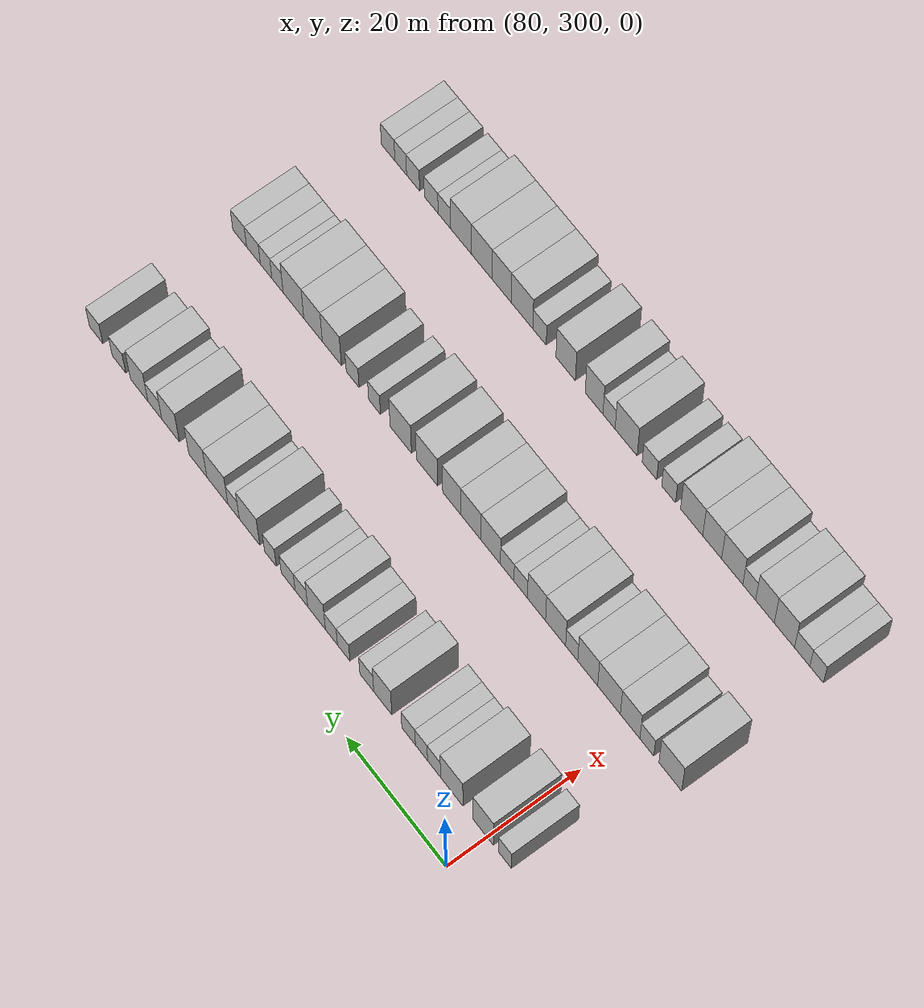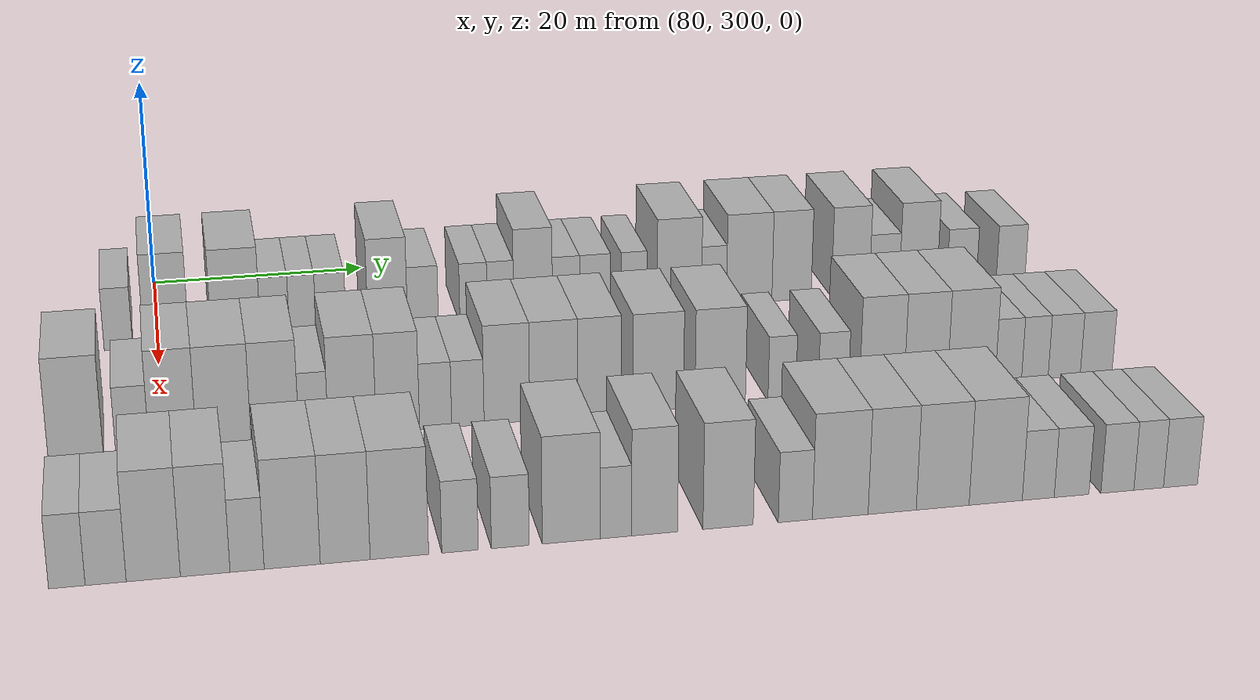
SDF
<sdf version="1.6">
 <world name="default">
  <model name="building_734">
   <static>1</static>
   <pose>91.0000 296.4878 0 0.000000 0.000000 0.000000</pose>
   <link name="link">
    <pose>0 0 3.00 0 0 0</pose>
    <collision name="collision"><geometry><box><size>10.0000 2.5455 6.0000</size></box></geometry></collision>
    <visual name="visual">
     <cast_shadows>0</cast_shadows>
     <geometry><box><size>10.0000 2.5455 6.0000</size></box></geometry>
     <material>
      <script>
       <uri>model://HANNAS_wall/materials/scripts</uri>
       <uri>model://HANNAS_wall/materials/textures</uri>
       <name>vrc/HANNAS_wall</name>
      </script>
     </material>
    </visual>
   </link>
  </model>
  <model name="building_735">
   <static>1</static>
   <pose>91.0000 300.7829 0 0.000000 0.000000 0.000000</pose>
   <link name="link">
    <pose>0 0 4.50 0 0 0</pose>
    <collision name="collision"><geometry><box><size>10.0000 4.0446 9.0000</size></box></geometry></collision>
    <visual name="visual">
     <cast_shadows>0</cast_shadows>
     <geometry><box><size>10.0000 4.0446 9.0000</size></box></geometry>
     <material>
      <script>
       <uri>model://HANNAS_wall/materials/scripts</uri>
       <uri>model://HANNAS_wall/materials/textures</uri>
       <name>vrc/HANNAS_wall</name>
      </script>
     </material>
    </visual>
   </link>
  </model>
  <model name="building_736">
   <static>1</static>
   <pose>91.0000 307.0333 0 0.000000 0.000000 0.000000</pose>
   <link name="link">
    <pose>0 0 4.50 0 0 0</pose>
    <collision name="collision"><geometry><box><size>10.0000 4.4562 9.0000</size></box></geometry></collision>
    <visual name="visual">
     <cast_shadows>0</cast_shadows>
     <geometry><box><size>10.0000 4.4562 9.0000</size></box></geometry>
     <material>
      <script>
       <uri>model://HANNAS_wall/materials/scripts</uri>
       <uri>model://HANNAS_wall/materials/textures</uri>
       <name>vrc/HANNAS_wall</name>
      </script>
     </material>
    </visual>
   </link>
  </model>
  <model name="building_737">
   <static>1</static>
   <pose>91.0000 310.5720 0 0.000000 0.000000 0.000000</pose>
   <link name="link">
    <pose>0 0 3.00 0 0 0</pose>
    <collision name="collision"><geometry><box><size>10.0000 2.6213 6.0000</size></box></geometry></collision>
    <visual name="visual">
     <cast_shadows>0</cast_shadows>
     <geometry><box><size>10.0000 2.6213 6.0000</size></box></geometry>
     <material>
      <script>
       <uri>model://HANNAS_wall/materials/scripts</uri>
       <uri>model://HANNAS_wall/materials/textures</uri>
       <name>vrc/HANNAS_wall</name>
      </script>
     </material>
    </visual>
   </link>
  </model>
  <model name="building_738">
   <static>1</static>
   <pose>91.0000 313.1034 0 0.000000 0.000000 0.000000</pose>
   <link name="link">
    <pose>0 0 3.00 0 0 0</pose>
    <collision name="collision"><geometry><box><size>10.0000 2.4415 6.0000</size></box></geometry></collision>
    <visual name="visual">
     <cast_shadows>0</cast_shadows>
     <geometry><box><size>10.0000 2.4415 6.0000</size></box></geometry>
     <material>
      <script>
       <uri>model://HANNAS_wall/materials/scripts</uri>
       <uri>model://HANNAS_wall/materials/textures</uri>
       <name>vrc/HANNAS_wall</name>
      </script>
     </material>
    </visual>
   </link>
  </model>
  <model name="building_739">
   <static>1</static>
   <pose>91.0000 315.6967 0 0.000000 0.000000 0.000000</pose>
   <link name="link">
    <pose>0 0 3.00 0 0 0</pose>
    <collision name="collision"><geometry><box><size>10.0000 2.7450 6.0000</size></box></geometry></collision>
    <visual name="visual">
     <cast_shadows>0</cast_shadows>
     <geometry><box><size>10.0000 2.7450 6.0000</size></box></geometry>
     <material>
      <script>
       <uri>model://HANNAS_wall/materials/scripts</uri>
       <uri>model://HANNAS_wall/materials/textures</uri>
       <name>vrc/HANNAS_wall</name>
      </script>
     </material>
    </visual>
   </link>
  </model>
  <model name="building_740">
   <static>1</static>
   <pose>91.0000 320.8995 0 0.000000 0.000000 0.000000</pose>
   <link name="link">
    <pose>0 0 4.50 0 0 0</pose>
    <collision name="collision"><geometry><box><size>10.0000 3.6604 9.0000</size></box></geometry></collision>
    <visual name="visual">
     <cast_shadows>0</cast_shadows>
     <geometry><box><size>10.0000 3.6604 9.0000</size></box></geometry>
     <material>
      <script>
       <uri>model://HANNAS_wall/materials/scripts</uri>
       <uri>model://HANNAS_wall/materials/textures</uri>
       <name>vrc/HANNAS_wall</name>
      </script>
     </material>
    </visual>
   </link>
  </model>
  <model name="building_741">
   <static>1</static>
   <pose>91.0000 324.1575 0 0.000000 0.000000 0.000000</pose>
   <link name="link">
    <pose>0 0 3.00 0 0 0</pose>
    <collision name="collision"><geometry><box><size>10.0000 2.8557 6.0000</size></box></geometry></collision>
    <visual name="visual">
     <cast_shadows>0</cast_shadows>
     <geometry><box><size>10.0000 2.8557 6.0000</size></box></geometry>
     <material>
      <script>
       <uri>model://HANNAS_wall/materials/scripts</uri>
       <uri>model://HANNAS_wall/materials/textures</uri>
       <name>vrc/HANNAS_wall</name>
      </script>
     </material>
    </visual>
   </link>
  </model>
  <model name="building_742">
   <static>1</static>
   <pose>91.0000 328.8654 0 0.000000 0.000000 0.000000</pose>
   <link name="link">
    <pose>0 0 3.00 0 0 0</pose>
    <collision name="collision"><geometry><box><size>10.0000 2.5600 6.0000</size></box></geometry></collision>
    <visual name="visual">
     <cast_shadows>0</cast_shadows>
     <geometry><box><size>10.0000 2.5600 6.0000</size></box></geometry>
     <material>
      <script>
       <uri>model://HANNAS_wall/materials/scripts</uri>
       <uri>model://HANNAS_wall/materials/textures</uri>
       <name>vrc/HANNAS_wall</name>
      </script>
     </material>
    </visual>
   </link>
  </model>
  <model name="building_743">
   <static>1</static>
   <pose>91.0000 331.3856 0 0.000000 0.000000 0.000000</pose>
   <link name="link">
    <pose>0 0 3.00 0 0 0</pose>
    <collision name="collision"><geometry><box><size>10.0000 2.4803 6.0000</size></box></geometry></collision>
    <visual name="visual">
     <cast_shadows>0</cast_shadows>
     <geometry><box><size>10.0000 2.4803 6.0000</size></box></geometry>
     <material>
      <script>
       <uri>model://HANNAS_wall/materials/scripts</uri>
       <uri>model://HANNAS_wall/materials/textures</uri>
       <name>vrc/HANNAS_wall</name>
      </script>
     </material>
    </visual>
   </link>
  </model>
  <model name="building_744">
   <static>1</static>
   <pose>91.0000 334.4514 0 0.000000 0.000000 0.000000</pose>
   <link name="link">
    <pose>0 0 4.50 0 0 0</pose>
    <collision name="collision"><geometry><box><size>10.0000 3.6512 9.0000</size></box></geometry></collision>
    <visual name="visual">
     <cast_shadows>0</cast_shadows>
     <geometry><box><size>10.0000 3.6512 9.0000</size></box></geometry>
     <material>
      <script>
       <uri>model://HANNAS_wall/materials/scripts</uri>
       <uri>model://HANNAS_wall/materials/textures</uri>
       <name>vrc/HANNAS_wall</name>
      </script>
     </material>
    </visual>
   </link>
  </model>
  <model name="building_745">
   <static>1</static>
   <pose>91.0000 337.5708 0 0.000000 0.000000 0.000000</pose>
   <link name="link">
    <pose>0 0 3.00 0 0 0</pose>
    <collision name="collision"><geometry><box><size>10.0000 2.5877 6.0000</size></box></geometry></collision>
    <visual name="visual">
     <cast_shadows>0</cast_shadows>
     <geometry><box><size>10.0000 2.5877 6.0000</size></box></geometry>
     <material>
      <script>
       <uri>model://HANNAS_wall/materials/scripts</uri>
       <uri>model://HANNAS_wall/materials/textures</uri>
       <name>vrc/HANNAS_wall</name>
      </script>
     </material>
    </visual>
   </link>
  </model>
  <model name="building_746">
   <static>1</static>
   <pose>91.0000 340.3262 0 0.000000 0.000000 0.000000</pose>
   <link name="link">
    <pose>0 0 3.00 0 0 0</pose>
    <collision name="collision"><geometry><box><size>10.0000 2.9230 6.0000</size></box></geometry></collision>
    <visual name="visual">
     <cast_shadows>0</cast_shadows>
     <geometry><box><size>10.0000 2.9230 6.0000</size></box></geometry>
     <material>
      <script>
       <uri>model://HANNAS_wall/materials/scripts</uri>
       <uri>model://HANNAS_wall/materials/textures</uri>
       <name>vrc/HANNAS_wall</name>
      </script>
     </material>
    </visual>
   </link>
  </model>
  <model name="building_747">
   <static>1</static>
   <pose>91.0000 344.0159 0 0.000000 0.000000 0.000000</pose>
   <link name="link">
    <pose>0 0 3.00 0 0 0</pose>
    <collision name="collision"><geometry><box><size>10.0000 2.4564 6.0000</size></box></geometry></collision>
    <visual name="visual">
     <cast_shadows>0</cast_shadows>
     <geometry><box><size>10.0000 2.4564 6.0000</size></box></geometry>
     <material>
      <script>
       <uri>model://HANNAS_wall/materials/scripts</uri>
       <uri>model://HANNAS_wall/materials/textures</uri>
       <name>vrc/HANNAS_wall</name>
      </script>
     </material>
    </visual>
   </link>
  </model>
  <model name="building_748">
   <static>1</static>
   <pose>91.0000 348.3791 0 0.000000 0.000000 0.000000</pose>
   <link name="link">
    <pose>0 0 4.50 0 0 0</pose>
    <collision name="collision"><geometry><box><size>10.0000 4.2700 9.0000</size></box></geometry></collision>
    <visual name="visual">
     <cast_shadows>0</cast_shadows>
     <geometry><box><size>10.0000 4.2700 9.0000</size></box></geometry>
     <material>
      <script>
       <uri>model://HANNAS_wall/materials/scripts</uri>
       <uri>model://HANNAS_wall/materials/textures</uri>
       <name>vrc/HANNAS_wall</name>
      </script>
     </material>
    </visual>
   </link>
  </model>
  <model name="building_749">
   <static>1</static>
   <pose>91.0000 351.7228 0 0.000000 0.000000 0.000000</pose>
   <link name="link">
    <pose>0 0 3.00 0 0 0</pose>
    <collision name="collision"><geometry><box><size>10.0000 2.4174 6.0000</size></box></geometry></collision>
    <visual name="visual">
     <cast_shadows>0</cast_shadows>
     <geometry><box><size>10.0000 2.4174 6.0000</size></box></geometry>
     <material>
      <script>
       <uri>model://HANNAS_wall/materials/scripts</uri>
       <uri>model://HANNAS_wall/materials/textures</uri>
       <name>vrc/HANNAS_wall</name>
      </script>
     </material>
    </visual>
   </link>
  </model>
  <model name="building_750">
   <static>1</static>
   <pose>91.0000 355.1483 0 0.000000 0.000000 0.000000</pose>
   <link name="link">
    <pose>0 0 4.50 0 0 0</pose>
    <collision name="collision"><geometry><box><size>10.0000 4.4337 9.0000</size></box></geometry></collision>
    <visual name="visual">
     <cast_shadows>0</cast_shadows>
     <geometry><box><size>10.0000 4.4337 9.0000</size></box></geometry>
     <material>
      <script>
       <uri>model://HANNAS_wall/materials/scripts</uri>
       <uri>model://HANNAS_wall/materials/textures</uri>
       <name>vrc/HANNAS_wall</name>
      </script>
     </material>
    </visual>
   </link>
  </model>
  <model name="building_751">
   <static>1</static>
   <pose>91.0000 359.2871 0 0.000000 0.000000 0.000000</pose>
   <link name="link">
    <pose>0 0 4.50 0 0 0</pose>
    <collision name="collision"><geometry><box><size>10.0000 3.8438 9.0000</size></box></geometry></collision>
    <visual name="visual">
     <cast_shadows>0</cast_shadows>
     <geometry><box><size>10.0000 3.8438 9.0000</size></box></geometry>
     <material>
      <script>
       <uri>model://HANNAS_wall/materials/scripts</uri>
       <uri>model://HANNAS_wall/materials/textures</uri>
       <name>vrc/HANNAS_wall</name>
      </script>
     </material>
    </visual>
   </link>
  </model>
  <model name="building_752">
   <static>1</static>
   <pose>91.0000 365.0783 0 0.000000 0.000000 0.000000</pose>
   <link name="link">
    <pose>0 0 4.50 0 0 0</pose>
    <collision name="collision"><geometry><box><size>10.0000 3.7385 9.0000</size></box></geometry></collision>
    <visual name="visual">
     <cast_shadows>0</cast_shadows>
     <geometry><box><size>10.0000 3.7385 9.0000</size></box></geometry>
     <material>
      <script>
       <uri>model://HANNAS_wall/materials/scripts</uri>
       <uri>model://HANNAS_wall/materials/textures</uri>
       <name>vrc/HANNAS_wall</name>
      </script>
     </material>
    </visual>
   </link>
  </model>
  <model name="building_753">
   <static>1</static>
   <pose>91.0000 368.4300 0 0.000000 0.000000 0.000000</pose>
   <link name="link">
    <pose>0 0 3.00 0 0 0</pose>
    <collision name="collision"><geometry><box><size>10.0000 2.9649 6.0000</size></box></geometry></collision>
    <visual name="visual">
     <cast_shadows>0</cast_shadows>
     <geometry><box><size>10.0000 2.9649 6.0000</size></box></geometry>
     <material>
      <script>
       <uri>model://HANNAS_wall/materials/scripts</uri>
       <uri>model://HANNAS_wall/materials/textures</uri>
       <name>vrc/HANNAS_wall</name>
      </script>
     </material>
    </visual>
   </link>
  </model>
  <model name="building_754">
   <static>1</static>
   <pose>91.0000 371.7949 0 0.000000 0.000000 0.000000</pose>
   <link name="link">
    <pose>0 0 4.50 0 0 0</pose>
    <collision name="collision"><geometry><box><size>10.0000 3.7648 9.0000</size></box></geometry></collision>
    <visual name="visual">
     <cast_shadows>0</cast_shadows>
     <geometry><box><size>10.0000 3.7648 9.0000</size></box></geometry>
     <material>
      <script>
       <uri>model://HANNAS_wall/materials/scripts</uri>
       <uri>model://HANNAS_wall/materials/textures</uri>
       <name>vrc/HANNAS_wall</name>
      </script>
     </material>
    </visual>
   </link>
  </model>
  <model name="building_755">
   <static>1</static>
   <pose>91.0000 376.1648 0 0.000000 0.000000 0.000000</pose>
   <link name="link">
    <pose>0 0 3.00 0 0 0</pose>
    <collision name="collision"><geometry><box><size>10.0000 2.9751 6.0000</size></box></geometry></collision>
    <visual name="visual">
     <cast_shadows>0</cast_shadows>
     <geometry><box><size>10.0000 2.9751 6.0000</size></box></geometry>
     <material>
      <script>
       <uri>model://HANNAS_wall/materials/scripts</uri>
       <uri>model://HANNAS_wall/materials/textures</uri>
       <name>vrc/HANNAS_wall</name>
      </script>
     </material>
    </visual>
   </link>
  </model>
  <model name="building_756">
   <static>1</static>
   <pose>91.0000 381.1087 0 0.000000 0.000000 0.000000</pose>
   <link name="link">
    <pose>0 0 3.00 0 0 0</pose>
    <collision name="collision"><geometry><box><size>10.0000 2.9127 6.0000</size></box></geometry></collision>
    <visual name="visual">
     <cast_shadows>0</cast_shadows>
     <geometry><box><size>10.0000 2.9127 6.0000</size></box></geometry>
     <material>
      <script>
       <uri>model://HANNAS_wall/materials/scripts</uri>
       <uri>model://HANNAS_wall/materials/textures</uri>
       <name>vrc/HANNAS_wall</name>
      </script>
     </material>
    </visual>
   </link>
  </model>
  <model name="building_921">
   <static>1</static>
   <pose>113.0000 292.8996 0 0.000000 0.000000 0.000000</pose>
   <link name="link">
    <pose>0 0 4.50 0 0 0</pose>
    <collision name="collision"><geometry><box><size>10.0000 4.4288 9.0000</size></box></geometry></collision>
    <visual name="visual">
     <cast_shadows>0</cast_shadows>
     <geometry><box><size>10.0000 4.4288 9.0000</size></box></geometry>
     <material>
      <script>
       <uri>model://HANNAS_wall/materials/scripts</uri>
       <uri>model://HANNAS_wall/materials/textures</uri>
       <name>vrc/HANNAS_wall</name>
      </script>
     </material>
    </visual>
   </link>
  </model>
  <model name="building_922">
   <static>1</static>
   <pose>113.0000 297.4747 0 0.000000 0.000000 0.000000</pose>
   <link name="link">
    <pose>0 0 3.00 0 0 0</pose>
    <collision name="collision"><geometry><box><size>10.0000 2.7214 6.0000</size></box></geometry></collision>
    <visual name="visual">
     <cast_shadows>0</cast_shadows>
     <geometry><box><size>10.0000 2.7214 6.0000</size></box></geometry>
     <material>
      <script>
       <uri>model://HANNAS_wall/materials/scripts</uri>
       <uri>model://HANNAS_wall/materials/textures</uri>
       <name>vrc/HANNAS_wall</name>
      </script>
     </material>
    </visual>
   </link>
  </model>
  <model name="building_923">
   <static>1</static>
   <pose>113.0000 300.7567 0 0.000000 0.000000 0.000000</pose>
   <link name="link">
    <pose>0 0 4.50 0 0 0</pose>
    <collision name="collision"><geometry><box><size>10.0000 3.8426 9.0000</size></box></geometry></collision>
    <visual name="visual">
     <cast_shadows>0</cast_shadows>
     <geometry><box><size>10.0000 3.8426 9.0000</size></box></geometry>
     <material>
      <script>
       <uri>model://HANNAS_wall/materials/scripts</uri>
       <uri>model://HANNAS_wall/materials/textures</uri>
       <name>vrc/HANNAS_wall</name>
      </script>
     </material>
    </visual>
   </link>
  </model>
  <model name="building_924">
   <static>1</static>
   <pose>113.0000 304.9173 0 0.000000 0.000000 0.000000</pose>
   <link name="link">
    <pose>0 0 4.50 0 0 0</pose>
    <collision name="collision"><geometry><box><size>10.0000 4.4786 9.0000</size></box></geometry></collision>
    <visual name="visual">
     <cast_shadows>0</cast_shadows>
     <geometry><box><size>10.0000 4.4786 9.0000</size></box></geometry>
     <material>
      <script>
       <uri>model://HANNAS_wall/materials/scripts</uri>
       <uri>model://HANNAS_wall/materials/textures</uri>
       <name>vrc/HANNAS_wall</name>
      </script>
     </material>
    </visual>
   </link>
  </model>
  <model name="building_925">
   <static>1</static>
   <pose>113.0000 309.1323 0 0.000000 0.000000 0.000000</pose>
   <link name="link">
    <pose>0 0 4.50 0 0 0</pose>
    <collision name="collision"><geometry><box><size>10.0000 3.9515 9.0000</size></box></geometry></collision>
    <visual name="visual">
     <cast_shadows>0</cast_shadows>
     <geometry><box><size>10.0000 3.9515 9.0000</size></box></geometry>
     <material>
      <script>
       <uri>model://HANNAS_wall/materials/scripts</uri>
       <uri>model://HANNAS_wall/materials/textures</uri>
       <name>vrc/HANNAS_wall</name>
      </script>
     </material>
    </visual>
   </link>
  </model>
  <model name="building_926">
   <static>1</static>
   <pose>113.0000 312.3217 0 0.000000 0.000000 0.000000</pose>
   <link name="link">
    <pose>0 0 3.00 0 0 0</pose>
    <collision name="collision"><geometry><box><size>10.0000 2.4273 6.0000</size></box></geometry></collision>
    <visual name="visual">
     <cast_shadows>0</cast_shadows>
     <geometry><box><size>10.0000 2.4273 6.0000</size></box></geometry>
     <material>
      <script>
       <uri>model://HANNAS_wall/materials/scripts</uri>
       <uri>model://HANNAS_wall/materials/textures</uri>
       <name>vrc/HANNAS_wall</name>
      </script>
     </material>
    </visual>
   </link>
  </model>
  <model name="building_927">
   <static>1</static>
   <pose>113.0000 315.5363 0 0.000000 0.000000 0.000000</pose>
   <link name="link">
    <pose>0 0 4.50 0 0 0</pose>
    <collision name="collision"><geometry><box><size>10.0000 4.0019 9.0000</size></box></geometry></collision>
    <visual name="visual">
     <cast_shadows>0</cast_shadows>
     <geometry><box><size>10.0000 4.0019 9.0000</size></box></geometry>
     <material>
      <script>
       <uri>model://HANNAS_wall/materials/scripts</uri>
       <uri>model://HANNAS_wall/materials/textures</uri>
       <name>vrc/HANNAS_wall</name>
      </script>
     </material>
    </visual>
   </link>
  </model>
  <model name="building_928">
   <static>1</static>
   <pose>113.0000 319.3557 0 0.000000 0.000000 0.000000</pose>
   <link name="link">
    <pose>0 0 4.50 0 0 0</pose>
    <collision name="collision"><geometry><box><size>10.0000 3.6367 9.0000</size></box></geometry></collision>
    <visual name="visual">
     <cast_shadows>0</cast_shadows>
     <geometry><box><size>10.0000 3.6367 9.0000</size></box></geometry>
     <material>
      <script>
       <uri>model://HANNAS_wall/materials/scripts</uri>
       <uri>model://HANNAS_wall/materials/textures</uri>
       <name>vrc/HANNAS_wall</name>
      </script>
     </material>
    </visual>
   </link>
  </model>
  <model name="building_929">
   <static>1</static>
   <pose>113.0000 322.5303 0 0.000000 0.000000 0.000000</pose>
   <link name="link">
    <pose>0 0 3.00 0 0 0</pose>
    <collision name="collision"><geometry><box><size>10.0000 2.7125 6.0000</size></box></geometry></collision>
    <visual name="visual">
     <cast_shadows>0</cast_shadows>
     <geometry><box><size>10.0000 2.7125 6.0000</size></box></geometry>
     <material>
      <script>
       <uri>model://HANNAS_wall/materials/scripts</uri>
       <uri>model://HANNAS_wall/materials/textures</uri>
       <name>vrc/HANNAS_wall</name>
      </script>
     </material>
    </visual>
   </link>
  </model>
  <model name="building_930">
   <static>1</static>
   <pose>113.0000 325.2609 0 0.000000 0.000000 0.000000</pose>
   <link name="link">
    <pose>0 0 3.00 0 0 0</pose>
    <collision name="collision"><geometry><box><size>10.0000 2.7487 6.0000</size></box></geometry></collision>
    <visual name="visual">
     <cast_shadows>0</cast_shadows>
     <geometry><box><size>10.0000 2.7487 6.0000</size></box></geometry>
     <material>
      <script>
       <uri>model://HANNAS_wall/materials/scripts</uri>
       <uri>model://HANNAS_wall/materials/textures</uri>
       <name>vrc/HANNAS_wall</name>
      </script>
     </material>
    </visual>
   </link>
  </model>
  <model name="building_931">
   <static>1</static>
   <pose>113.0000 328.5849 0 0.000000 0.000000 0.000000</pose>
   <link name="link">
    <pose>0 0 4.50 0 0 0</pose>
    <collision name="collision"><geometry><box><size>10.0000 3.8993 9.0000</size></box></geometry></collision>
    <visual name="visual">
     <cast_shadows>0</cast_shadows>
     <geometry><box><size>10.0000 3.8993 9.0000</size></box></geometry>
     <material>
      <script>
       <uri>model://HANNAS_wall/materials/scripts</uri>
       <uri>model://HANNAS_wall/materials/textures</uri>
       <name>vrc/HANNAS_wall</name>
      </script>
     </material>
    </visual>
   </link>
  </model>
  <model name="building_932">
   <static>1</static>
   <pose>113.0000 332.5960 0 0.000000 0.000000 0.000000</pose>
   <link name="link">
    <pose>0 0 4.50 0 0 0</pose>
    <collision name="collision"><geometry><box><size>10.0000 4.1229 9.0000</size></box></geometry></collision>
    <visual name="visual">
     <cast_shadows>0</cast_shadows>
     <geometry><box><size>10.0000 4.1229 9.0000</size></box></geometry>
     <material>
      <script>
       <uri>model://HANNAS_wall/materials/scripts</uri>
       <uri>model://HANNAS_wall/materials/textures</uri>
       <name>vrc/HANNAS_wall</name>
      </script>
     </material>
    </visual>
   </link>
  </model>
  <model name="building_933">
   <static>1</static>
   <pose>113.0000 336.5395 0 0.000000 0.000000 0.000000</pose>
   <link name="link">
    <pose>0 0 4.50 0 0 0</pose>
    <collision name="collision"><geometry><box><size>10.0000 3.7642 9.0000</size></box></geometry></collision>
    <visual name="visual">
     <cast_shadows>0</cast_shadows>
     <geometry><box><size>10.0000 3.7642 9.0000</size></box></geometry>
     <material>
      <script>
       <uri>model://HANNAS_wall/materials/scripts</uri>
       <uri>model://HANNAS_wall/materials/textures</uri>
       <name>vrc/HANNAS_wall</name>
      </script>
     </material>
    </visual>
   </link>
  </model>
  <model name="building_934">
   <static>1</static>
   <pose>113.0000 341.6287 0 0.000000 0.000000 0.000000</pose>
   <link name="link">
    <pose>0 0 4.50 0 0 0</pose>
    <collision name="collision"><geometry><box><size>10.0000 4.4141 9.0000</size></box></geometry></collision>
    <visual name="visual">
     <cast_shadows>0</cast_shadows>
     <geometry><box><size>10.0000 4.4141 9.0000</size></box></geometry>
     <material>
      <script>
       <uri>model://HANNAS_wall/materials/scripts</uri>
       <uri>model://HANNAS_wall/materials/textures</uri>
       <name>vrc/HANNAS_wall</name>
      </script>
     </material>
    </visual>
   </link>
  </model>
  <model name="building_935">
   <static>1</static>
   <pose>113.0000 347.0630 0 0.000000 0.000000 0.000000</pose>
   <link name="link">
    <pose>0 0 4.50 0 0 0</pose>
    <collision name="collision"><geometry><box><size>10.0000 4.4546 9.0000</size></box></geometry></collision>
    <visual name="visual">
     <cast_shadows>0</cast_shadows>
     <geometry><box><size>10.0000 4.4546 9.0000</size></box></geometry>
     <material>
      <script>
       <uri>model://HANNAS_wall/materials/scripts</uri>
       <uri>model://HANNAS_wall/materials/textures</uri>
       <name>vrc/HANNAS_wall</name>
      </script>
     </material>
    </visual>
   </link>
  </model>
  <model name="building_936">
   <static>1</static>
   <pose>113.0000 352.5253 0 0.000000 0.000000 0.000000</pose>
   <link name="link">
    <pose>0 0 3.00 0 0 0</pose>
    <collision name="collision"><geometry><box><size>10.0000 2.4700 6.0000</size></box></geometry></collision>
    <visual name="visual">
     <cast_shadows>0</cast_shadows>
     <geometry><box><size>10.0000 2.4700 6.0000</size></box></geometry>
     <material>
      <script>
       <uri>model://HANNAS_wall/materials/scripts</uri>
       <uri>model://HANNAS_wall/materials/textures</uri>
       <name>vrc/HANNAS_wall</name>
      </script>
     </material>
    </visual>
   </link>
  </model>
  <model name="building_937">
   <static>1</static>
   <pose>113.0000 357.1103 0 0.000000 0.000000 0.000000</pose>
   <link name="link">
    <pose>0 0 3.00 0 0 0</pose>
    <collision name="collision"><geometry><box><size>10.0000 2.7001 6.0000</size></box></geometry></collision>
    <visual name="visual">
     <cast_shadows>0</cast_shadows>
     <geometry><box><size>10.0000 2.7001 6.0000</size></box></geometry>
     <material>
      <script>
       <uri>model://HANNAS_wall/materials/scripts</uri>
       <uri>model://HANNAS_wall/materials/textures</uri>
       <name>vrc/HANNAS_wall</name>
      </script>
     </material>
    </visual>
   </link>
  </model>
  <model name="building_938">
   <static>1</static>
   <pose>113.0000 361.4770 0 0.000000 0.000000 0.000000</pose>
   <link name="link">
    <pose>0 0 4.50 0 0 0</pose>
    <collision name="collision"><geometry><box><size>10.0000 4.0332 9.0000</size></box></geometry></collision>
    <visual name="visual">
     <cast_shadows>0</cast_shadows>
     <geometry><box><size>10.0000 4.0332 9.0000</size></box></geometry>
     <material>
      <script>
       <uri>model://HANNAS_wall/materials/scripts</uri>
       <uri>model://HANNAS_wall/materials/textures</uri>
       <name>vrc/HANNAS_wall</name>
      </script>
     </material>
    </visual>
   </link>
  </model>
  <model name="building_939">
   <static>1</static>
   <pose>113.0000 365.4579 0 0.000000 0.000000 0.000000</pose>
   <link name="link">
    <pose>0 0 4.50 0 0 0</pose>
    <collision name="collision"><geometry><box><size>10.0000 3.9286 9.0000</size></box></geometry></collision>
    <visual name="visual">
     <cast_shadows>0</cast_shadows>
     <geometry><box><size>10.0000 3.9286 9.0000</size></box></geometry>
     <material>
      <script>
       <uri>model://HANNAS_wall/materials/scripts</uri>
       <uri>model://HANNAS_wall/materials/textures</uri>
       <name>vrc/HANNAS_wall</name>
      </script>
     </material>
    </visual>
   </link>
  </model>
  <model name="building_940">
   <static>1</static>
   <pose>113.0000 369.6126 0 0.000000 0.000000 0.000000</pose>
   <link name="link">
    <pose>0 0 4.50 0 0 0</pose>
    <collision name="collision"><geometry><box><size>10.0000 4.3807 9.0000</size></box></geometry></collision>
    <visual name="visual">
     <cast_shadows>0</cast_shadows>
     <geometry><box><size>10.0000 4.3807 9.0000</size></box></geometry>
     <material>
      <script>
       <uri>model://HANNAS_wall/materials/scripts</uri>
       <uri>model://HANNAS_wall/materials/textures</uri>
       <name>vrc/HANNAS_wall</name>
      </script>
     </material>
    </visual>
   </link>
  </model>
  <model name="building_941">
   <static>1</static>
   <pose>113.0000 373.0164 0 0.000000 0.000000 0.000000</pose>
   <link name="link">
    <pose>0 0 3.00 0 0 0</pose>
    <collision name="collision"><geometry><box><size>10.0000 2.4270 6.0000</size></box></geometry></collision>
    <visual name="visual">
     <cast_shadows>0</cast_shadows>
     <geometry><box><size>10.0000 2.4270 6.0000</size></box></geometry>
     <material>
      <script>
       <uri>model://HANNAS_wall/materials/scripts</uri>
       <uri>model://HANNAS_wall/materials/textures</uri>
       <name>vrc/HANNAS_wall</name>
      </script>
     </material>
    </visual>
   </link>
  </model>
  <model name="building_942">
   <static>1</static>
   <pose>113.0000 375.4571 0 0.000000 0.000000 0.000000</pose>
   <link name="link">
    <pose>0 0 3.00 0 0 0</pose>
    <collision name="collision"><geometry><box><size>10.0000 2.4544 6.0000</size></box></geometry></collision>
    <visual name="visual">
     <cast_shadows>0</cast_shadows>
     <geometry><box><size>10.0000 2.4544 6.0000</size></box></geometry>
     <material>
      <script>
       <uri>model://HANNAS_wall/materials/scripts</uri>
       <uri>model://HANNAS_wall/materials/textures</uri>
       <name>vrc/HANNAS_wall</name>
      </script>
     </material>
    </visual>
   </link>
  </model>
  <model name="building_943">
   <static>1</static>
   <pose>113.0000 378.1772 0 0.000000 0.000000 0.000000</pose>
   <link name="link">
    <pose>0 0 3.00 0 0 0</pose>
    <collision name="collision"><geometry><box><size>10.0000 2.9858 6.0000</size></box></geometry></collision>
    <visual name="visual">
     <cast_shadows>0</cast_shadows>
     <geometry><box><size>10.0000 2.9858 6.0000</size></box></geometry>
     <material>
      <script>
       <uri>model://HANNAS_wall/materials/scripts</uri>
       <uri>model://HANNAS_wall/materials/textures</uri>
       <name>vrc/HANNAS_wall</name>
      </script>
     </material>
    </visual>
   </link>
  </model>
  <model name="building_944">
   <static>1</static>
   <pose>113.0000 381.1536 0 0.000000 0.000000 0.000000</pose>
   <link name="link">
    <pose>0 0 3.00 0 0 0</pose>
    <collision name="collision"><geometry><box><size>10.0000 2.9670 6.0000</size></box></geometry></collision>
    <visual name="visual">
     <cast_shadows>0</cast_shadows>
     <geometry><box><size>10.0000 2.9670 6.0000</size></box></geometry>
     <material>
      <script>
       <uri>model://HANNAS_wall/materials/scripts</uri>
       <uri>model://HANNAS_wall/materials/textures</uri>
       <name>vrc/HANNAS_wall</name>
      </script>
     </material>
    </visual>
   </link>
  </model>
  <model name="building_1114">
   <static>1</static>
   <pose>135.0000 292.4466 0 0.000000 0.000000 0.000000</pose>
   <link name="link">
    <pose>0 0 3.00 0 0 0</pose>
    <collision name="collision"><geometry><box><size>10.0000 2.6404 6.0000</size></box></geometry></collision>
    <visual name="visual">
     <cast_shadows>0</cast_shadows>
     <geometry><box><size>10.0000 2.6404 6.0000</size></box></geometry>
     <material>
      <script>
       <uri>model://HANNAS_wall/materials/scripts</uri>
       <uri>model://HANNAS_wall/materials/textures</uri>
       <name>vrc/HANNAS_wall</name>
      </script>
     </material>
    </visual>
   </link>
  </model>
  <model name="building_1115">
   <static>1</static>
   <pose>135.0000 295.2531 0 0.000000 0.000000 0.000000</pose>
   <link name="link">
    <pose>0 0 3.00 0 0 0</pose>
    <collision name="collision"><geometry><box><size>10.0000 2.9728 6.0000</size></box></geometry></collision>
    <visual name="visual">
     <cast_shadows>0</cast_shadows>
     <geometry><box><size>10.0000 2.9728 6.0000</size></box></geometry>
     <material>
      <script>
       <uri>model://HANNAS_wall/materials/scripts</uri>
       <uri>model://HANNAS_wall/materials/textures</uri>
       <name>vrc/HANNAS_wall</name>
      </script>
     </material>
    </visual>
   </link>
  </model>
  <model name="building_1116">
   <static>1</static>
   <pose>135.0000 298.7163 0 0.000000 0.000000 0.000000</pose>
   <link name="link">
    <pose>0 0 4.50 0 0 0</pose>
    <collision name="collision"><geometry><box><size>10.0000 3.9536 9.0000</size></box></geometry></collision>
    <visual name="visual">
     <cast_shadows>0</cast_shadows>
     <geometry><box><size>10.0000 3.9536 9.0000</size></box></geometry>
     <material>
      <script>
       <uri>model://HANNAS_wall/materials/scripts</uri>
       <uri>model://HANNAS_wall/materials/textures</uri>
       <name>vrc/HANNAS_wall</name>
      </script>
     </material>
    </visual>
   </link>
  </model>
  <model name="building_1117">
   <static>1</static>
   <pose>135.0000 302.5163 0 0.000000 0.000000 0.000000</pose>
   <link name="link">
    <pose>0 0 4.50 0 0 0</pose>
    <collision name="collision"><geometry><box><size>10.0000 3.6464 9.0000</size></box></geometry></collision>
    <visual name="visual">
     <cast_shadows>0</cast_shadows>
     <geometry><box><size>10.0000 3.6464 9.0000</size></box></geometry>
     <material>
      <script>
       <uri>model://HANNAS_wall/materials/scripts</uri>
       <uri>model://HANNAS_wall/materials/textures</uri>
       <name>vrc/HANNAS_wall</name>
      </script>
     </material>
    </visual>
   </link>
  </model>
  <model name="building_1118">
   <static>1</static>
   <pose>135.0000 305.6021 0 0.000000 0.000000 0.000000</pose>
   <link name="link">
    <pose>0 0 3.00 0 0 0</pose>
    <collision name="collision"><geometry><box><size>10.0000 2.5250 6.0000</size></box></geometry></collision>
    <visual name="visual">
     <cast_shadows>0</cast_shadows>
     <geometry><box><size>10.0000 2.5250 6.0000</size></box></geometry>
     <material>
      <script>
       <uri>model://HANNAS_wall/materials/scripts</uri>
       <uri>model://HANNAS_wall/materials/textures</uri>
       <name>vrc/HANNAS_wall</name>
      </script>
     </material>
    </visual>
   </link>
  </model>
  <model name="building_1119">
   <static>1</static>
   <pose>135.0000 308.9533 0 0.000000 0.000000 0.000000</pose>
   <link name="link">
    <pose>0 0 4.50 0 0 0</pose>
    <collision name="collision"><geometry><box><size>10.0000 4.1774 9.0000</size></box></geometry></collision>
    <visual name="visual">
     <cast_shadows>0</cast_shadows>
     <geometry><box><size>10.0000 4.1774 9.0000</size></box></geometry>
     <material>
      <script>
       <uri>model://HANNAS_wall/materials/scripts</uri>
       <uri>model://HANNAS_wall/materials/textures</uri>
       <name>vrc/HANNAS_wall</name>
      </script>
     </material>
    </visual>
   </link>
  </model>
  <model name="building_1120">
   <static>1</static>
   <pose>135.0000 312.9127 0 0.000000 0.000000 0.000000</pose>
   <link name="link">
    <pose>0 0 4.50 0 0 0</pose>
    <collision name="collision"><geometry><box><size>10.0000 3.7415 9.0000</size></box></geometry></collision>
    <visual name="visual">
     <cast_shadows>0</cast_shadows>
     <geometry><box><size>10.0000 3.7415 9.0000</size></box></geometry>
     <material>
      <script>
       <uri>model://HANNAS_wall/materials/scripts</uri>
       <uri>model://HANNAS_wall/materials/textures</uri>
       <name>vrc/HANNAS_wall</name>
      </script>
     </material>
    </visual>
   </link>
  </model>
  <model name="building_1121">
   <static>1</static>
   <pose>135.0000 316.9907 0 0.000000 0.000000 0.000000</pose>
   <link name="link">
    <pose>0 0 4.50 0 0 0</pose>
    <collision name="collision"><geometry><box><size>10.0000 4.4145 9.0000</size></box></geometry></collision>
    <visual name="visual">
     <cast_shadows>0</cast_shadows>
     <geometry><box><size>10.0000 4.4145 9.0000</size></box></geometry>
     <material>
      <script>
       <uri>model://HANNAS_wall/materials/scripts</uri>
       <uri>model://HANNAS_wall/materials/textures</uri>
       <name>vrc/HANNAS_wall</name>
      </script>
     </material>
    </visual>
   </link>
  </model>
  <model name="building_1122">
   <static>1</static>
   <pose>135.0000 321.5886 0 0.000000 0.000000 0.000000</pose>
   <link name="link">
    <pose>0 0 3.00 0 0 0</pose>
    <collision name="collision"><geometry><box><size>10.0000 2.7814 6.0000</size></box></geometry></collision>
    <visual name="visual">
     <cast_shadows>0</cast_shadows>
     <geometry><box><size>10.0000 2.7814 6.0000</size></box></geometry>
     <material>
      <script>
       <uri>model://HANNAS_wall/materials/scripts</uri>
       <uri>model://HANNAS_wall/materials/textures</uri>
       <name>vrc/HANNAS_wall</name>
      </script>
     </material>
    </visual>
   </link>
  </model>
  <model name="building_1123">
   <static>1</static>
   <pose>135.0000 325.4356 0 0.000000 0.000000 0.000000</pose>
   <link name="link">
    <pose>0 0 3.00 0 0 0</pose>
    <collision name="collision"><geometry><box><size>10.0000 2.9126 6.0000</size></box></geometry></collision>
    <visual name="visual">
     <cast_shadows>0</cast_shadows>
     <geometry><box><size>10.0000 2.9126 6.0000</size></box></geometry>
     <material>
      <script>
       <uri>model://HANNAS_wall/materials/scripts</uri>
       <uri>model://HANNAS_wall/materials/textures</uri>
       <name>vrc/HANNAS_wall</name>
      </script>
     </material>
    </visual>
   </link>
  </model>
  <model name="building_1124">
   <static>1</static>
   <pose>135.0000 330.1253 0 0.000000 0.000000 0.000000</pose>
   <link name="link">
    <pose>0 0 4.50 0 0 0</pose>
    <collision name="collision"><geometry><box><size>10.0000 4.4668 9.0000</size></box></geometry></collision>
    <visual name="visual">
     <cast_shadows>0</cast_shadows>
     <geometry><box><size>10.0000 4.4668 9.0000</size></box></geometry>
     <material>
      <script>
       <uri>model://HANNAS_wall/materials/scripts</uri>
       <uri>model://HANNAS_wall/materials/textures</uri>
       <name>vrc/HANNAS_wall</name>
      </script>
     </material>
    </visual>
   </link>
  </model>
  <model name="building_1125">
   <static>1</static>
   <pose>135.0000 333.5907 0 0.000000 0.000000 0.000000</pose>
   <link name="link">
    <pose>0 0 3.00 0 0 0</pose>
    <collision name="collision"><geometry><box><size>10.0000 2.4640 6.0000</size></box></geometry></collision>
    <visual name="visual">
     <cast_shadows>0</cast_shadows>
     <geometry><box><size>10.0000 2.4640 6.0000</size></box></geometry>
     <material>
      <script>
       <uri>model://HANNAS_wall/materials/scripts</uri>
       <uri>model://HANNAS_wall/materials/textures</uri>
       <name>vrc/HANNAS_wall</name>
      </script>
     </material>
    </visual>
   </link>
  </model>
  <model name="building_1126">
   <static>1</static>
   <pose>135.0000 336.6291 0 0.000000 0.000000 0.000000</pose>
   <link name="link">
    <pose>0 0 4.50 0 0 0</pose>
    <collision name="collision"><geometry><box><size>10.0000 3.6127 9.0000</size></box></geometry></collision>
    <visual name="visual">
     <cast_shadows>0</cast_shadows>
     <geometry><box><size>10.0000 3.6127 9.0000</size></box></geometry>
     <material>
      <script>
       <uri>model://HANNAS_wall/materials/scripts</uri>
       <uri>model://HANNAS_wall/materials/textures</uri>
       <name>vrc/HANNAS_wall</name>
      </script>
     </material>
    </visual>
   </link>
  </model>
  <model name="building_1127">
   <static>1</static>
   <pose>135.0000 342.4295 0 0.000000 0.000000 0.000000</pose>
   <link name="link">
    <pose>0 0 4.50 0 0 0</pose>
    <collision name="collision"><geometry><box><size>10.0000 3.9882 9.0000</size></box></geometry></collision>
    <visual name="visual">
     <cast_shadows>0</cast_shadows>
     <geometry><box><size>10.0000 3.9882 9.0000</size></box></geometry>
     <material>
      <script>
       <uri>model://HANNAS_wall/materials/scripts</uri>
       <uri>model://HANNAS_wall/materials/textures</uri>
       <name>vrc/HANNAS_wall</name>
      </script>
     </material>
    </visual>
   </link>
  </model>
  <model name="building_1128">
   <static>1</static>
   <pose>135.0000 347.7915 0 0.000000 0.000000 0.000000</pose>
   <link name="link">
    <pose>0 0 3.00 0 0 0</pose>
    <collision name="collision"><geometry><box><size>10.0000 2.7357 6.0000</size></box></geometry></collision>
    <visual name="visual">
     <cast_shadows>0</cast_shadows>
     <geometry><box><size>10.0000 2.7357 6.0000</size></box></geometry>
     <material>
      <script>
       <uri>model://HANNAS_wall/materials/scripts</uri>
       <uri>model://HANNAS_wall/materials/textures</uri>
       <name>vrc/HANNAS_wall</name>
      </script>
     </material>
    </visual>
   </link>
  </model>
  <model name="building_1129">
   <static>1</static>
   <pose>135.0000 351.4061 0 0.000000 0.000000 0.000000</pose>
   <link name="link">
    <pose>0 0 4.50 0 0 0</pose>
    <collision name="collision"><geometry><box><size>10.0000 4.4934 9.0000</size></box></geometry></collision>
    <visual name="visual">
     <cast_shadows>0</cast_shadows>
     <geometry><box><size>10.0000 4.4934 9.0000</size></box></geometry>
     <material>
      <script>
       <uri>model://HANNAS_wall/materials/scripts</uri>
       <uri>model://HANNAS_wall/materials/textures</uri>
       <name>vrc/HANNAS_wall</name>
      </script>
     </material>
    </visual>
   </link>
  </model>
  <model name="building_1130">
   <static>1</static>
   <pose>135.0000 355.6099 0 0.000000 0.000000 0.000000</pose>
   <link name="link">
    <pose>0 0 4.50 0 0 0</pose>
    <collision name="collision"><geometry><box><size>10.0000 3.9142 9.0000</size></box></geometry></collision>
    <visual name="visual">
     <cast_shadows>0</cast_shadows>
     <geometry><box><size>10.0000 3.9142 9.0000</size></box></geometry>
     <material>
      <script>
       <uri>model://HANNAS_wall/materials/scripts</uri>
       <uri>model://HANNAS_wall/materials/textures</uri>
       <name>vrc/HANNAS_wall</name>
      </script>
     </material>
    </visual>
   </link>
  </model>
  <model name="building_1131">
   <static>1</static>
   <pose>135.0000 359.7334 0 0.000000 0.000000 0.000000</pose>
   <link name="link">
    <pose>0 0 4.50 0 0 0</pose>
    <collision name="collision"><geometry><box><size>10.0000 4.3329 9.0000</size></box></geometry></collision>
    <visual name="visual">
     <cast_shadows>0</cast_shadows>
     <geometry><box><size>10.0000 4.3329 9.0000</size></box></geometry>
     <material>
      <script>
       <uri>model://HANNAS_wall/materials/scripts</uri>
       <uri>model://HANNAS_wall/materials/textures</uri>
       <name>vrc/HANNAS_wall</name>
      </script>
     </material>
    </visual>
   </link>
  </model>
  <model name="building_1132">
   <static>1</static>
   <pose>135.0000 364.0952 0 0.000000 0.000000 0.000000</pose>
   <link name="link">
    <pose>0 0 4.50 0 0 0</pose>
    <collision name="collision"><geometry><box><size>10.0000 4.3906 9.0000</size></box></geometry></collision>
    <visual name="visual">
     <cast_shadows>0</cast_shadows>
     <geometry><box><size>10.0000 4.3906 9.0000</size></box></geometry>
     <material>
      <script>
       <uri>model://HANNAS_wall/materials/scripts</uri>
       <uri>model://HANNAS_wall/materials/textures</uri>
       <name>vrc/HANNAS_wall</name>
      </script>
     </material>
    </visual>
   </link>
  </model>
  <model name="building_1133">
   <static>1</static>
   <pose>135.0000 367.6180 0 0.000000 0.000000 0.000000</pose>
   <link name="link">
    <pose>0 0 3.00 0 0 0</pose>
    <collision name="collision"><geometry><box><size>10.0000 2.6551 6.0000</size></box></geometry></collision>
    <visual name="visual">
     <cast_shadows>0</cast_shadows>
     <geometry><box><size>10.0000 2.6551 6.0000</size></box></geometry>
     <material>
      <script>
       <uri>model://HANNAS_wall/materials/scripts</uri>
       <uri>model://HANNAS_wall/materials/textures</uri>
       <name>vrc/HANNAS_wall</name>
      </script>
     </material>
    </visual>
   </link>
  </model>
  <model name="building_1134">
   <static>1</static>
   <pose>135.0000 370.3969 0 0.000000 0.000000 0.000000</pose>
   <link name="link">
    <pose>0 0 3.00 0 0 0</pose>
    <collision name="collision"><geometry><box><size>10.0000 2.9028 6.0000</size></box></geometry></collision>
    <visual name="visual">
     <cast_shadows>0</cast_shadows>
     <geometry><box><size>10.0000 2.9028 6.0000</size></box></geometry>
     <material>
      <script>
       <uri>model://HANNAS_wall/materials/scripts</uri>
       <uri>model://HANNAS_wall/materials/textures</uri>
       <name>vrc/HANNAS_wall</name>
      </script>
     </material>
    </visual>
   </link>
  </model>
  <model name="building_1135">
   <static>1</static>
   <pose>135.0000 374.2362 0 0.000000 0.000000 0.000000</pose>
   <link name="link">
    <pose>0 0 3.00 0 0 0</pose>
    <collision name="collision"><geometry><box><size>10.0000 2.7757 6.0000</size></box></geometry></collision>
    <visual name="visual">
     <cast_shadows>0</cast_shadows>
     <geometry><box><size>10.0000 2.7757 6.0000</size></box></geometry>
     <material>
      <script>
       <uri>model://HANNAS_wall/materials/scripts</uri>
       <uri>model://HANNAS_wall/materials/textures</uri>
       <name>vrc/HANNAS_wall</name>
      </script>
     </material>
    </visual>
   </link>
  </model>
  <model name="building_1136">
   <static>1</static>
   <pose>135.0000 376.8748 0 0.000000 0.000000 0.000000</pose>
   <link name="link">
    <pose>0 0 3.00 0 0 0</pose>
    <collision name="collision"><geometry><box><size>10.0000 2.5015 6.0000</size></box></geometry></collision>
    <visual name="visual">
     <cast_shadows>0</cast_shadows>
     <geometry><box><size>10.0000 2.5015 6.0000</size></box></geometry>
     <material>
      <script>
       <uri>model://HANNAS_wall/materials/scripts</uri>
       <uri>model://HANNAS_wall/materials/textures</uri>
       <name>vrc/HANNAS_wall</name>
      </script>
     </material>
    </visual>
   </link>
  </model>
  <model name="building_1137">
   <static>1</static>
   <pose>135.0000 379.5706 0 0.000000 0.000000 0.000000</pose>
   <link name="link">
    <pose>0 0 3.00 0 0 0</pose>
    <collision name="collision"><geometry><box><size>10.0000 2.8901 6.0000</size></box></geometry></collision>
    <visual name="visual">
     <cast_shadows>0</cast_shadows>
     <geometry><box><size>10.0000 2.8901 6.0000</size></box></geometry>
     <material>
      <script>
       <uri>model://HANNAS_wall/materials/scripts</uri>
       <uri>model://HANNAS_wall/materials/textures</uri>
       <name>vrc/HANNAS_wall</name>
      </script>
     </material>
    </visual>
   </link>
  </model>
 </world>
</sdf>
